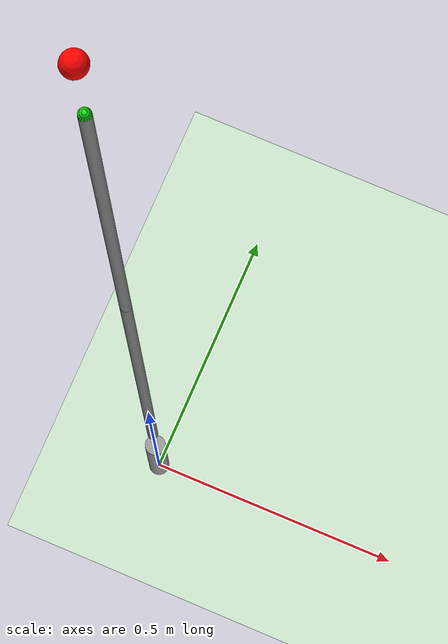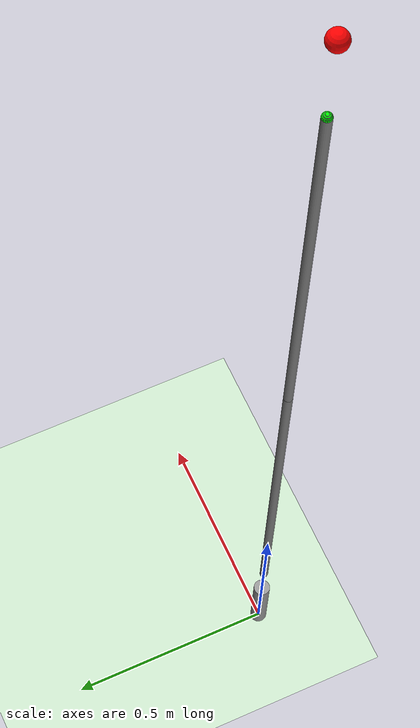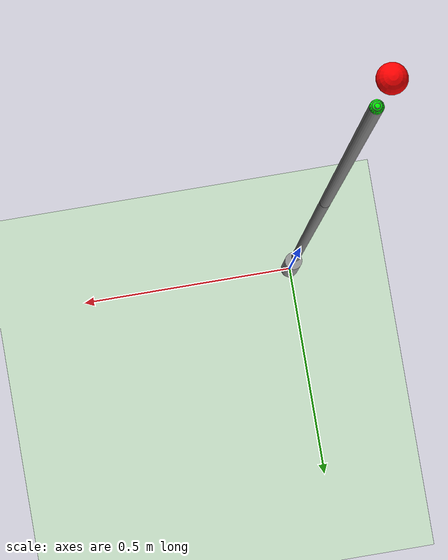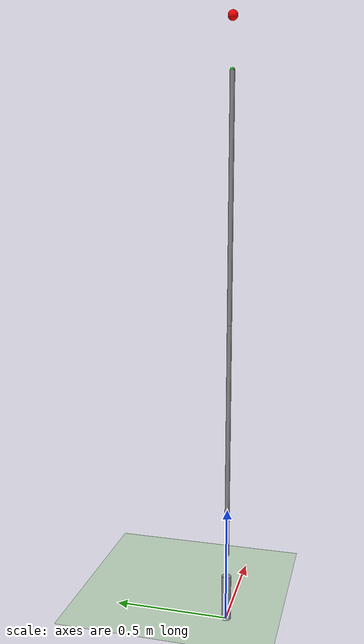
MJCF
<?xml version="1.0" encoding="UTF-8"?>
<mujoco model="sundog_alignment">
    <compiler angle="radian" coordinate="local"/>
    <option gravity="0 0 -9.81" integrator="RK4" timestep="0.01"/>

    <worldbody>
        <!-- Floor -->
        <geom name="floor" type="plane" pos="0 0 0" size="5 5 0.1" rgba="0.8 0.9 0.8 1"/>

        <!-- Ceiling -->
        <geom name="ceiling" type="plane" pos="0 0 2.5" size="5 5 0.1" rgba="0.8 0.8 1 1" euler="0 0 3.1416"/>

        <!-- Laser dot (invisible, logical target) -->
        <site name="laser_dot" pos="0 0 2.5" size="0.02" rgba="1 0 0 1"/>

        <!-- Pole base -->
        <body name="base" pos="0 0 0.1">
            <geom type="cylinder" size="0.02 0.1" rgba="0.6 0.6 0.6 1"/>
            <joint name="base_rotate" type="hinge" axis="0 0 1"/>
            <body name="pole1" pos="0 0 0.2">
                <geom type="capsule" size="0.01 0.5" fromto="0 0 0 0 0 1"/>
                <joint name="pitch1" type="hinge" axis="1 0 0"/>
                <body name="pole2" pos="0 0 1.0">
                    <geom type="capsule" size="0.01 0.5" fromto="0 0 0 0 0 1"/>
                    <joint name="pitch2" type="hinge" axis="1 0 0"/>
                    <site name="tip" pos="0 0 1.0" size="0.01" rgba="0 1 0 1"/>
                </body>
            </body>
        </body>
    </worldbody>

    <actuator>
        <motor joint="base_rotate" ctrlrange="-1 1"/>
        <motor joint="pitch1" ctrlrange="-1 1"/>
        <motor joint="pitch2" ctrlrange="-1 1"/>
    </actuator>
</mujoco>
